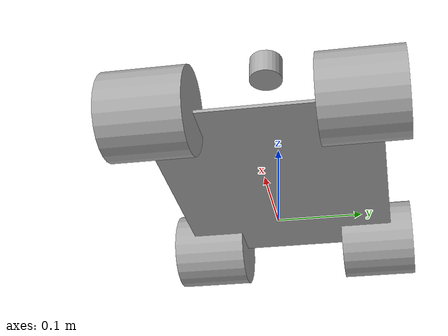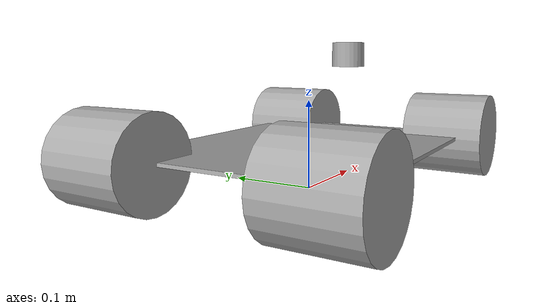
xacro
<?xml version="1.0"?>
<robot name="omninav" xmlns:xacro="http://www.ros.org/wiki/xacro">
<xacro:property name="chassis_length" value="0.33"/>
<xacro:property name="chassis_width" value="0.268"/>
<xacro:property name="chassis_height" value="0.004"/>
<xacro:property name="chassis_mass" value="2.135"/>
<xacro:property name="wheel_radius" value="0.05005"/>
<xacro:property name="wheel_width" value="0.094"/>
<xacro:property name="wheel_mass" value="0.141"/>
<xacro:property name="wheel_x_offset" value="0.167"/>
<xacro:property name="wheel_y_offset" value="0.115"/>
<xacro:property name="lidar_mass" value="0.05" />
<xacro:property name="lidar_radius" value="0.02" />
<xacro:property name="lidar_length" value="0.03" />

<material name="grey">
    <color rgba="0.663 0.663 0.663 1" />
</material>

<link name="base_footprint"/>

<joint name="base_footprint_joint" type="fixed">
    <parent link="base_footprint"/>
    <child link="base_link"/>
    <origin xyz="0.0 0.0 ${wheel_radius}" rpy="0.0 0.0 0.0"/>
</joint>

<link name="base_link">
    <visual>
        <geometry>
            <box size="${chassis_length} ${chassis_width} ${chassis_height}"/>
        </geometry>
        <material name="grey"/>
    </visual>

    <collision>
        <geometry>
            <box size="${chassis_length} ${chassis_width} ${chassis_height}"/>
        </geometry>
    </collision>

    <inertial>
        <origin xyz="0.0 0.0 0.0" rpy="0.0 0.0 0.0"/>
        <mass value="${chassis_mass}"/>
        <inertia ixx="${(chassis_mass/12) * ((chassis_width*chassis_width) + (chassis_height*chassis_height))}" ixy="0.0" ixz="0.0"
        iyy="${(chassis_mass/12) * ((chassis_length*chassis_length) + (chassis_height*chassis_height))}" iyz="0.0"
        izz="${(chassis_mass/12) * ((chassis_width*chassis_width) + (chassis_length*chassis_length))}"/>
    </inertial>
</link>

<xacro:macro name="wheel" params="prefix x_reflect y_reflect">
    <link name="${prefix}_wheel_link">
        <visual>
            <origin xyz="0.0 0.0 0.0" rpy="1.5708 0.0 0.0"/>
            <geometry>
                <cylinder radius="${wheel_radius}" length="${wheel_width}"/>
            </geometry>
            <material name="grey"/>
        </visual>

        <collision>
            <origin xyz="0.0 0.0 0.0" rpy="1.5708 0.0 0.0"/>
            <geometry>
                <cylinder radius="${wheel_radius}" length="${wheel_width}"/>
            </geometry>
        </collision>

        <!-- Inertial frame is rotated like the cylinder, so the cylinder axis is this frame's z,
             izz = m r^2 / 2 (spin axis), ixx = iyy = m (3r^2 + h^2) / 12 -->
        <inertial>
            <origin xyz="0.0 0.0 0.0" rpy="1.5708 0.0 0.0"/>
            <mass value="${wheel_mass}"/>
            <inertia ixx="${(wheel_mass/12) * (3*wheel_radius*wheel_radius + wheel_width*wheel_width)}" ixy="0.0" ixz="0.0"
            iyy="${(wheel_mass/12) * (3*wheel_radius*wheel_radius + wheel_width*wheel_width)}" iyz="0.0"
            izz="${(wheel_mass/2) * (wheel_radius*wheel_radius)}"/>
        </inertial>
    </link>

    <joint name="${prefix}_wheel_joint" type="continuous">
        <parent link="base_link"/>
        <child link="${prefix}_wheel_link"/>
        <axis xyz="0 1 0"/>
        <origin xyz="${x_reflect*wheel_x_offset} ${y_reflect*wheel_y_offset} 0" rpy="0 0 0"/>
    </joint>

    <!-- Frictionless wheels - they only hold the body up; VelocityControl moves the body -->
    <gazebo reference="${prefix}_wheel_link">
        <mu1>0.0</mu1>
        <mu2>0.0</mu2>
    </gazebo>
</xacro:macro>

<xacro:wheel prefix="front_left" x_reflect="1" y_reflect="1"/>
<xacro:wheel prefix="front_right" x_reflect="1" y_reflect="-1"/>
<xacro:wheel prefix="back_left" x_reflect="-1" y_reflect="1"/>
<xacro:wheel prefix="back_right" x_reflect="-1" y_reflect="-1"/>

<link name="lidar_link">
    <visual>
        <origin xyz="0.0 0.0 0.0" rpy="0.0 0.0 0.0"/>
        <geometry>
            <cylinder radius="${lidar_radius}" length="${lidar_length}"/>
        </geometry>
        <material name="grey"/>
    </visual>

    <inertial>
        <origin xyz="0.0 0.0 0.0" rpy="0.0 0.0 0.0"/>
        <mass value="${lidar_mass}"/>
        <inertia ixx="${(lidar_mass/12) * (3*lidar_radius*lidar_radius + lidar_length*lidar_length)}" ixy="0.0" ixz="0.0"
        iyy="${(lidar_mass/12) * (3*lidar_radius*lidar_radius + lidar_length*lidar_length)}" iyz="0.0"
        izz="${(lidar_mass/2) * (lidar_radius*lidar_radius)}"/>
    </inertial>
</link>

<!-- 0.10 above base_link = 0.15 above the floor, clear of the wheel tops (0.10) -->
<joint name="lidar_joint" type="fixed">
    <origin xyz="0.1 0.0 0.10" rpy="0.0 0.0 0.0"/>
    <parent link="base_link"/>
    <child link="lidar_link"/>
</joint>

<!-- LiDAR for Gazebo -->
<gazebo reference="lidar_link">
    <sensor name="lidar" type="gpu_lidar">
        <topic>/lidar</topic>
        <update_rate>10</update_rate>
        <always_on>true</always_on>
        <visualize>true</visualize>
        <lidar>
            <scan>
                <horizontal>
                    <samples>360</samples>
                    <resolution>1</resolution>
                    <min_angle>-3.14159</min_angle>
                    <max_angle>3.14159</max_angle>
                </horizontal>
            </scan>
            <range>
                <min>0.08</min>
                <max>10.0</max>
                <resolution>0.01</resolution>
            </range>
        </lidar>
    </sensor>
</gazebo>

<!-- Holonomic base - sets the body velocity (x, y, yaw) straight from cmd_vel.
     Replaces MecanumDrive, which cannot strafe with plain cylinder wheels. -->
<gazebo>
    <plugin filename="gz-sim-velocity-control-system" name="gz::sim::systems::VelocityControl">
        <topic>cmd_vel</topic>
    </plugin>
</gazebo>

<!-- Ground-truth odometry - publishes /odom and the odom to base_footprint TF -->
<gazebo>
    <plugin filename="gz-sim-odometry-publisher-system" name="gz::sim::systems::OdometryPublisher">
        <odom_frame>odom</odom_frame>
        <robot_base_frame>base_footprint</robot_base_frame>
        <odom_topic>odom</odom_topic>
        <tf_topic>tf</tf_topic>
        <odom_publish_frequency>50</odom_publish_frequency>
        <dimensions>2</dimensions>
    </plugin>
</gazebo>

<gazebo>
    <plugin filename="gz-sim-joint-state-publisher-system" name="gz::sim::systems::JointStatePublisher">
        <topic>joint_states</topic>
    </plugin>
</gazebo>

</robot>
